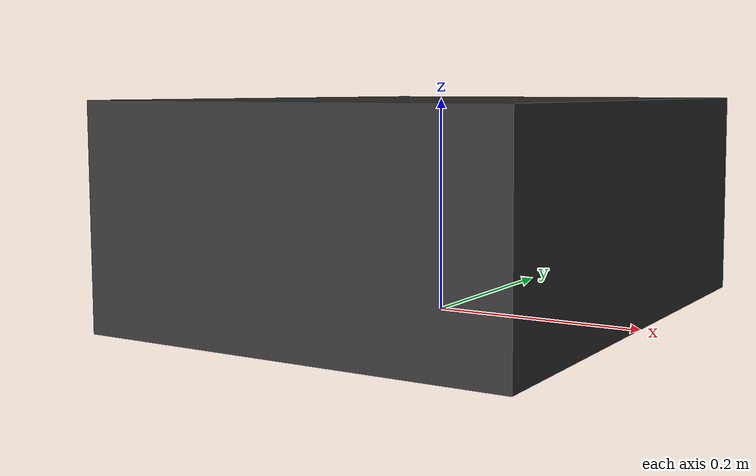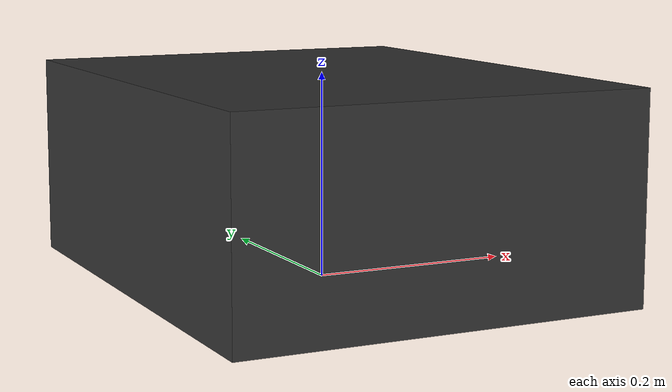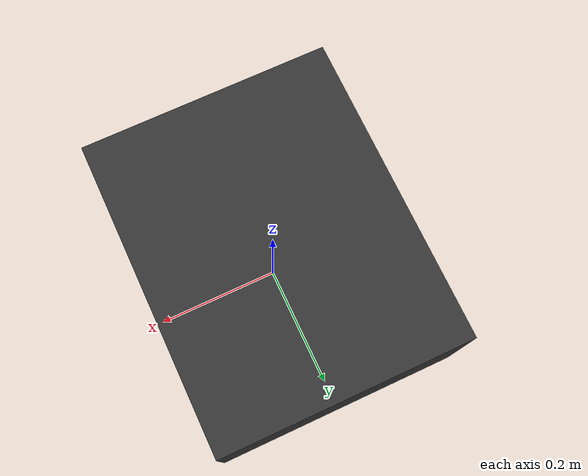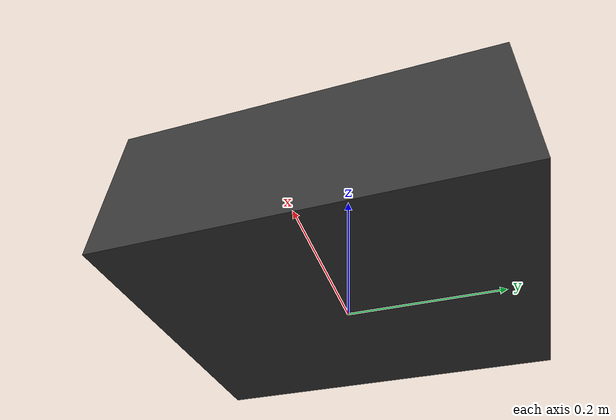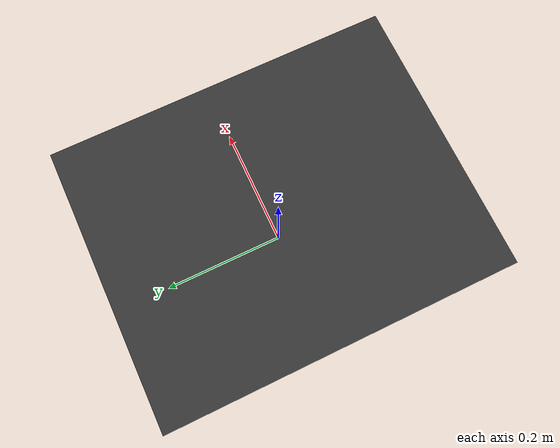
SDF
<?xml version="1.0" ?>
<sdf version="1.4">
  <model name="turtlebot3_dock">
    <static>true</static>
    <link name="dock_link">
      <visual name="dock_visual">
        <geometry>
          <box>
            <size>0.4 0.5 0.2</size>
          </box>
        </geometry>
        <material>
          <ambient>0.1 0.1 0.1 1</ambient>
          <diffuse>0.2 0.2 0.2 1</diffuse>
        </material>
      </visual>
      <collision name="dock_collision">
        <geometry>
          <box>
            <size>0.4 0.5 0.2</size>
          </box>
        </geometry>
      </collision>
      <pose>0 0 0.1 0 0 0</pose>
    </link>
    <pose>0 0 0 0 0 0</pose>
  </model>
</sdf>
